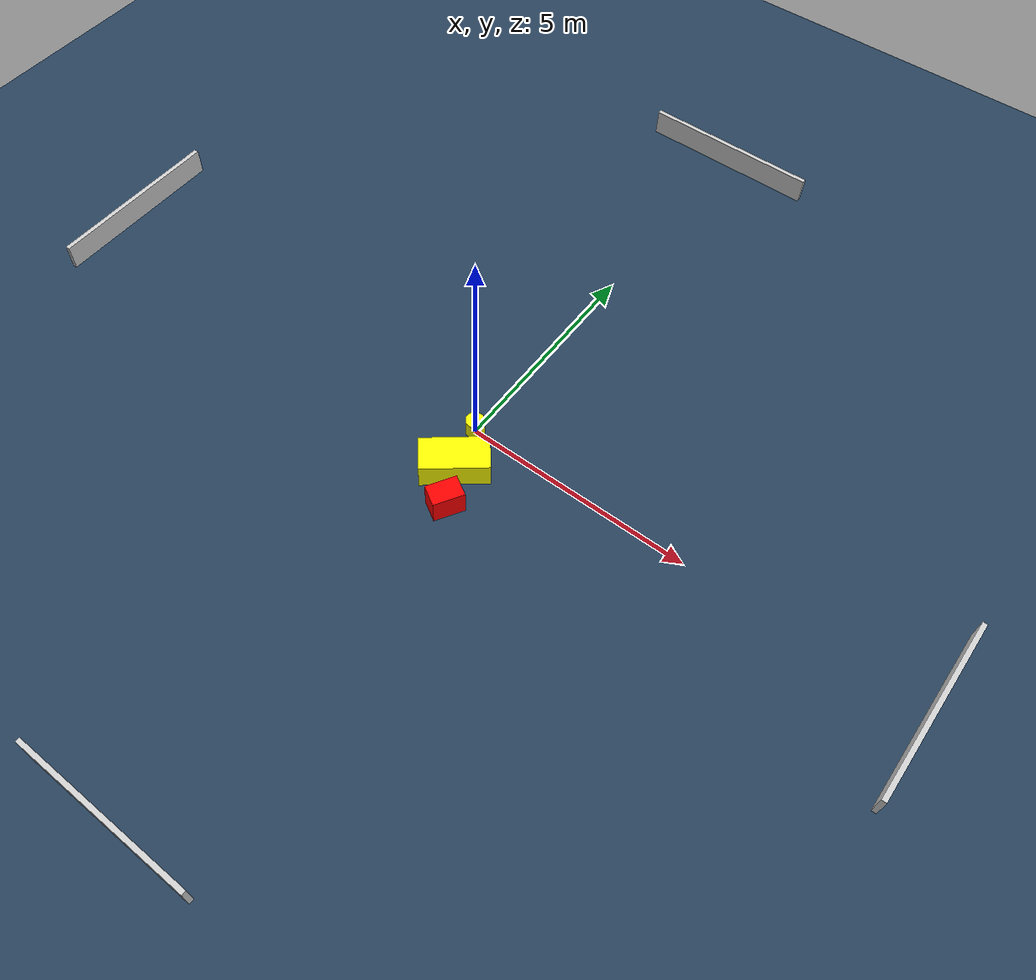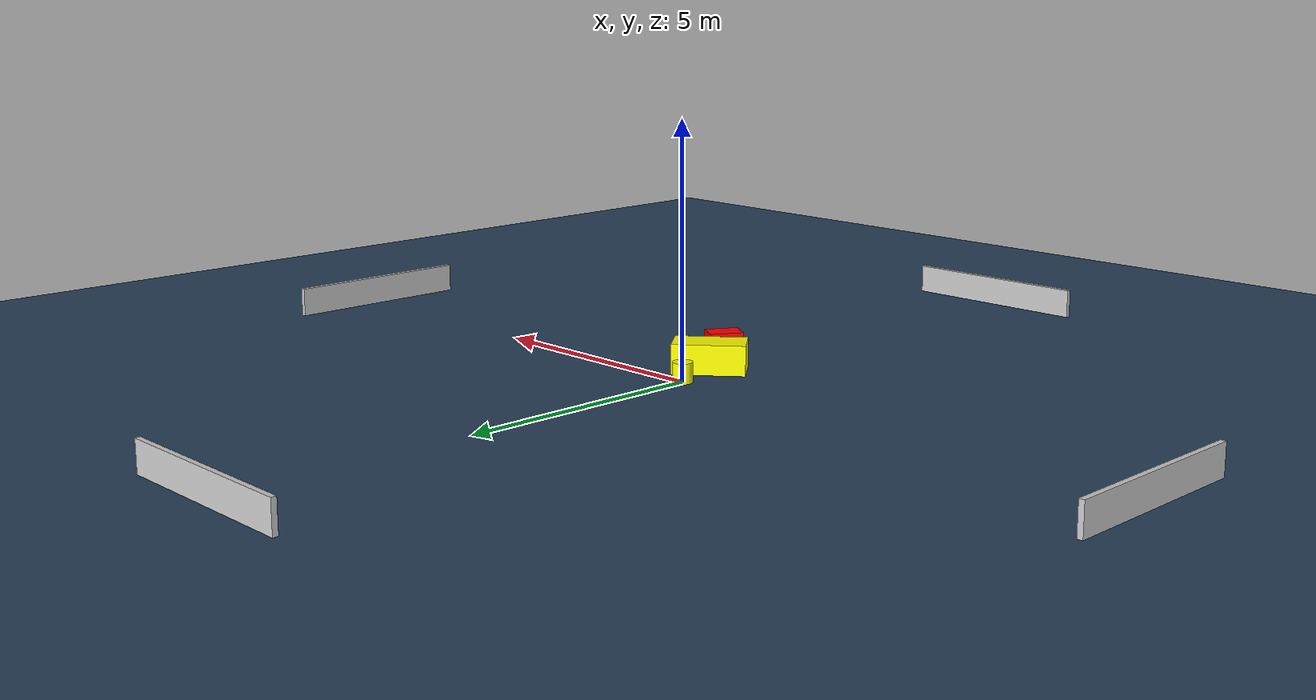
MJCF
<?xml version="1.0" ?>
<mujoco model="generated_environment">
  <option timestep="0.01" integrator="RK4" cone="elliptic"/>
  <default>
    <geom density="1"/>
  </default>
  <asset>
    <texture builtin="gradient" height="3072" name="skybox" rgb1="0.3 0.5 0.7" rgb2="0 0 0" type="skybox" width="512"/>
    <texture builtin="checker" height="300" name="groundplane" rgb1="0.2 0.3 0.4" rgb2="0.1 0.2 0.3" type="2d" width="300"/>
    <material name="groundplane" reflectance="0.2" texrepeat="5 5" texture="groundplane"/>
  </asset>
  <worldbody>
    <light dir="0 0 -1" directional="true" pos="0 0 1.5"/>
    <geom condim="3" friction="0.5 0.005 0.001" material="groundplane" name="floor" pos="0 0 0" size="0 0 0.05" type="plane"/>
    <body name="walls">
      <geom name="wall_1" condim="4" pos="-10.0 0.0 0.3" rgba="0.800000011920929 0.800000011920929 0.800000011920929 1.0" size="0.05 2.0 0.3" type="box"/>
      <geom name="wall_2" condim="4" pos="10.0 0.0 0.3" rgba="0.800000011920929 0.800000011920929 0.800000011920929 1.0" size="0.05 2.0 0.3" type="box"/>
      <geom name="wall_3" condim="4" pos="0.0 -10.0 0.3" rgba="0.800000011920929 0.800000011920929 0.800000011920929 1.0" size="2.0 0.05 0.3" type="box"/>
      <geom name="wall_4" condim="4" pos="0.0 10.0 0.3" rgba="0.800000011920929 0.800000011920929 0.800000011920929 1.0" size="2.0 0.05 0.3" type="box"/>
    </body>
    <body name="robot">
      <joint name="joint_x" type="slide" pos="0 0 0" axis="1 0 0"/>
      <joint name="joint_y" type="slide" pos="0 0 0" axis="0 1 0"/>
      <geom name="robot" type="cylinder" pos="0.0 0.0 0.2" size="0.2 0.2 0.0" mass="5.0" friction="1.0 0.005 0.0001" condim="4" rgba="1.0 1.0 0.0 1.0"/>
    </body>
    <body name="obstacle_1_movable">
      <geom name="obstacle_1_movable" condim="4" pos="0.2313020754590896 -0.9718764992580095 0.3" euler="0 0 39.39901940711859" friction="0.0 0.005 0.001" rgba="1.0 1.0 0.0 1.0" size="0.7177787383849659 0.37046495512741223 0.3" type="box" mass="0.1"/>
      <joint type="free"/>
    </body>
    <body name="obstacle_2_static">
      <geom name="obstacle_2_static" condim="4" pos="0.6311561710531013 -1.7679489298018836 0.3" euler="0 0 329.1481737570264" friction="0.0 0.005 0.001" rgba="1.0 0.0 0.0 1.0" size="0.23073416658245116 0.3342019372068985 0.3" type="box"/>
    </body>
  </worldbody>
  <actuator>
    <motor name="actuator_x" joint="joint_x" gear="1" ctrlrange="-1 1"/>
    <motor name="actuator_y" joint="joint_y" gear="1" ctrlrange="-1 1"/>
  </actuator>
</mujoco>
